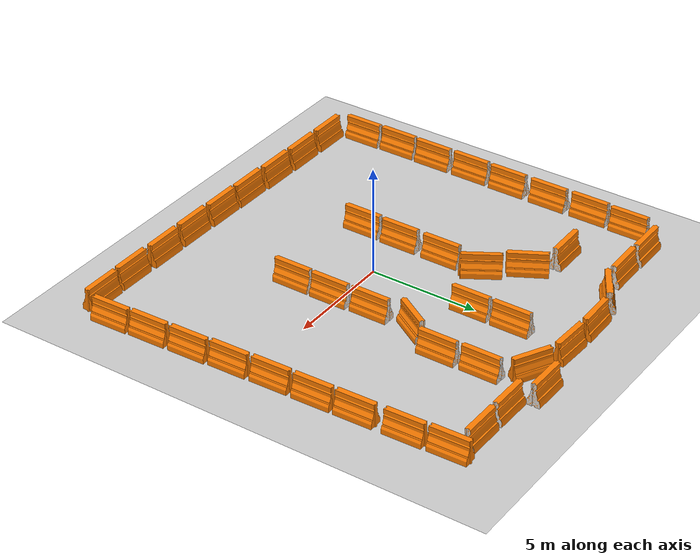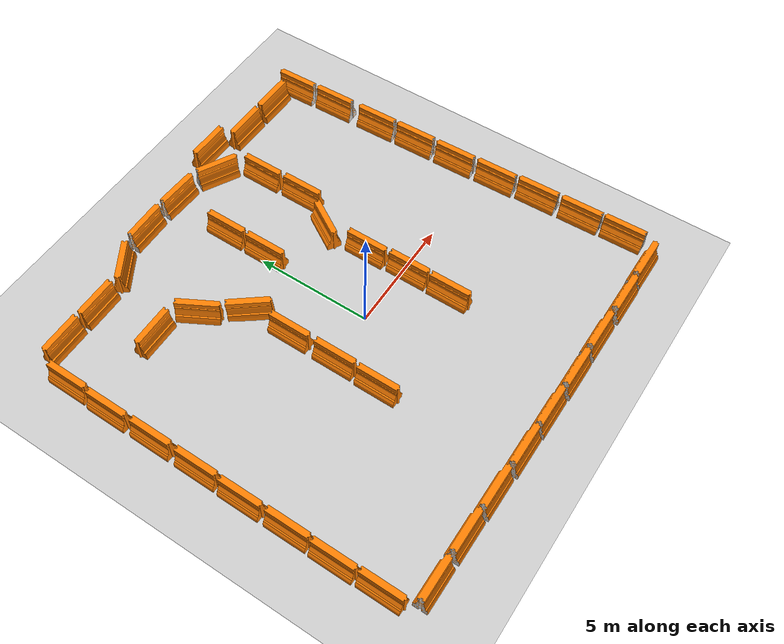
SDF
<sdf version="1.6">
 <world name="default">
  <light name="sun" type="directional">
   <pose>0 0 10 0 -0 0</pose>
   <diffuse>0.8 0.8 0.8 1</diffuse>
   <specular>0.1 0.1 0.1 1</specular>
   <attenuation>
    <range>1000</range>
    <constant>0.9</constant>
    <linear>0.01</linear>
    <quadratic>0.001</quadratic>
   </attenuation>
   <direction>-0.5 0.5 -1</direction>
  </light>
  <model name="ground_plane">
   <static>1</static>
   <link name="link">
    <collision name="collision">
     <geometry><plane><normal>0 0 1</normal><size>100 100</size></plane></geometry>
     <surface><friction><ode><mu>100</mu><mu2>50</mu2></ode></friction></surface>
    </collision>
    <visual name="visual">
     <cast_shadows>0</cast_shadows>
     <geometry><plane><normal>0 0 1</normal><size>100 100</size></plane></geometry>
     <material>
      <script><uri>file://media/materials/scripts/gazebo.material</uri><name>Gazebo/Grey</name></script>
     </material>
    </visual>
   </link>
  </model>
  <gravity>0 0 -9.8</gravity>
  <magnetic_field>6e-06 2.3e-05 -4.2e-05</magnetic_field>
  <atmosphere type="adiabatic"/>
  <physics name="default_physics" default="0" type="ode">
   <max_step_size>0.001</max_step_size>
   <real_time_factor>1</real_time_factor>
   <real_time_update_rate>1000</real_time_update_rate>
  </physics>
  <scene><ambient>0.4 0.4 0.4 1</ambient><background>0.7 0.7 0.7 1</background><shadows>1</shadows></scene>
  <spherical_coordinates>
   <surface_model>EARTH_WGS84</surface_model>
   <latitude_deg>0</latitude_deg>
   <longitude_deg>0</longitude_deg>
   <elevation>0</elevation>
   <heading_deg>0</heading_deg>
  </spherical_coordinates>
  <model name="drc_practice_organge_jersey_barrier">
   <static>1</static>
   <link name="link">
    <visual name="visual">
     <geometry>
      <mesh>
       <uri>model://drc_practice_orange_jersey_barrier/meshes/jersey_barrier.dae</uri>
       <scale>1 1 1</scale>
      </mesh>
     </geometry>
    </visual>
    <collision name="collision">
     <geometry>
      <mesh>
       <uri>model://drc_practice_orange_jersey_barrier/meshes/jersey_barrier.dae</uri>
       <scale>1 1 1</scale>
      </mesh>
     </geometry>
    </collision>
   </link>
   <pose>2.6608 -0.303272 0 0 -0 0</pose>
  </model>
  <model name="drc_practice_organge_jersey_barrier_0">
   <static>1</static>
   <link name="link">
    <visual name="visual">
     <geometry>
      <mesh>
       <uri>model://drc_practice_orange_jersey_barrier/meshes/jersey_barrier.dae</uri>
       <scale>1 1 1</scale>
      </mesh>
     </geometry>
    </visual>
    <collision name="collision">
     <geometry>
      <mesh>
       <uri>model://drc_practice_orange_jersey_barrier/meshes/jersey_barrier.dae</uri>
       <scale>1 1 1</scale>
      </mesh>
     </geometry>
    </collision>
   </link>
   <pose>-2.34525 -0.188624 0 0 -0 0</pose>
  </model>
  <model name="drc_practice_organge_jersey_barrier_1">
   <static>1</static>
   <link name="link">
    <visual name="visual">
     <geometry>
      <mesh>
       <uri>model://drc_practice_orange_jersey_barrier/meshes/jersey_barrier.dae</uri>
       <scale>1 1 1</scale>
      </mesh>
     </geometry>
    </visual>
    <collision name="collision">
     <geometry>
      <mesh>
       <uri>model://drc_practice_orange_jersey_barrier/meshes/jersey_barrier.dae</uri>
       <scale>1 1 1</scale>
      </mesh>
     </geometry>
    </collision>
   </link>
   <pose>-2.39684 -2.14149 0 0 -0 0</pose>
  </model>
  <model name="drc_practice_organge_jersey_barrier_2">
   <static>1</static>
   <link name="link">
    <visual name="visual">
     <geometry>
      <mesh>
       <uri>model://drc_practice_orange_jersey_barrier/meshes/jersey_barrier.dae</uri>
       <scale>1 1 1</scale>
      </mesh>
     </geometry>
    </visual>
    <collision name="collision">
     <geometry>
      <mesh>
       <uri>model://drc_practice_orange_jersey_barrier/meshes/jersey_barrier.dae</uri>
       <scale>1 1 1</scale>
      </mesh>
     </geometry>
    </collision>
   </link>
   <pose>2.63426 -2.20556 0 0 -0 0</pose>
  </model>
  <model name="drc_practice_organge_jersey_barrier_3">
   <static>1</static>
   <link name="link">
    <visual name="visual">
     <geometry>
      <mesh>
       <uri>model://drc_practice_orange_jersey_barrier/meshes/jersey_barrier.dae</uri>
       <scale>1 1 1</scale>
      </mesh>
     </geometry>
    </visual>
    <collision name="collision">
     <geometry>
      <mesh>
       <uri>model://drc_practice_orange_jersey_barrier/meshes/jersey_barrier.dae</uri>
       <scale>1 1 1</scale>
      </mesh>
     </geometry>
    </collision>
   </link>
   <pose>-2.32301 1.91358 0 0 -0 0</pose>
  </model>
  <model name="drc_practice_organge_jersey_barrier_4">
   <static>1</static>
   <link name="link">
    <visual name="visual">
     <geometry>
      <mesh>
       <uri>model://drc_practice_orange_jersey_barrier/meshes/jersey_barrier.dae</uri>
       <scale>1 1 1</scale>
      </mesh>
     </geometry>
    </visual>
    <collision name="collision">
     <geometry>
      <mesh>
       <uri>model://drc_practice_orange_jersey_barrier/meshes/jersey_barrier.dae</uri>
       <scale>1 1 1</scale>
      </mesh>
     </geometry>
    </collision>
   </link>
   <pose>2.60868 1.66239 0 0 -0 0</pose>
  </model>
  <model name="drc_practice_organge_jersey_barrier_5">
   <static>1</static>
   <link name="link">
    <visual name="visual">
     <geometry>
      <mesh>
       <uri>model://drc_practice_orange_jersey_barrier/meshes/jersey_barrier.dae</uri>
       <scale>1 1 1</scale>
      </mesh>
     </geometry>
    </visual>
    <collision name="collision">
     <geometry>
      <mesh>
       <uri>model://drc_practice_orange_jersey_barrier/meshes/jersey_barrier.dae</uri>
       <scale>1 1 1</scale>
      </mesh>
     </geometry>
    </collision>
   </link>
   <pose>2.64714 3.71117 0 0 0 -0.548524</pose>
  </model>
  <model name="drc_practice_organge_jersey_barrier_6">
   <static>1</static>
   <link name="link">
    <visual name="visual">
     <geometry>
      <mesh>
       <uri>model://drc_practice_orange_jersey_barrier/meshes/jersey_barrier.dae</uri>
       <scale>1 1 1</scale>
      </mesh>
     </geometry>
    </visual>
    <collision name="collision">
     <geometry>
      <mesh>
       <uri>model://drc_practice_orange_jersey_barrier/meshes/jersey_barrier.dae</uri>
       <scale>1 1 1</scale>
      </mesh>
     </geometry>
    </collision>
   </link>
   <pose>-2.28616 3.84452 0 -0.058362 -0.078618 0.639624</pose>
  </model>
  <model name="drc_practice_organge_jersey_barrier_7">
   <static>1</static>
   <link name="link">
    <visual name="visual">
     <geometry>
      <mesh>
       <uri>model://drc_practice_orange_jersey_barrier/meshes/jersey_barrier.dae</uri>
       <scale>1 1 1</scale>
      </mesh>
     </geometry>
    </visual>
    <collision name="collision">
     <geometry>
      <mesh>
       <uri>model://drc_practice_orange_jersey_barrier/meshes/jersey_barrier.dae</uri>
       <scale>1 1 1</scale>
      </mesh>
     </geometry>
    </collision>
   </link>
   <pose>0.217138 4.96333 0 0 -0 0</pose>
  </model>
  <model name="drc_practice_organge_jersey_barrier_8">
   <static>1</static>
   <link name="link">
    <visual name="visual">
     <geometry>
      <mesh>
       <uri>model://drc_practice_orange_jersey_barrier/meshes/jersey_barrier.dae</uri>
       <scale>1 1 1</scale>
      </mesh>
     </geometry>
    </visual>
    <collision name="collision">
     <geometry>
      <mesh>
       <uri>model://drc_practice_orange_jersey_barrier/meshes/jersey_barrier.dae</uri>
       <scale>1 1 1</scale>
      </mesh>
     </geometry>
    </collision>
   </link>
   <pose>0.234122 6.91695 0 0 -0 0</pose>
  </model>
  <model name="drc_practice_organge_jersey_barrier_9">
   <static>1</static>
   <link name="link">
    <visual name="visual">
     <geometry>
      <mesh>
       <uri>model://drc_practice_orange_jersey_barrier/meshes/jersey_barrier.dae</uri>
       <scale>1 1 1</scale>
      </mesh>
     </geometry>
    </visual>
    <collision name="collision">
     <geometry>
      <mesh>
       <uri>model://drc_practice_orange_jersey_barrier/meshes/jersey_barrier.dae</uri>
       <scale>1 1 1</scale>
      </mesh>
     </geometry>
    </collision>
   </link>
   <pose>3.5228 5.50245 0 0 -0 0</pose>
  </model>
  <model name="drc_practice_organge_jersey_barrier_10">
   <static>1</static>
   <link name="link">
    <visual name="visual">
     <geometry>
      <mesh>
       <uri>model://drc_practice_orange_jersey_barrier/meshes/jersey_barrier.dae</uri>
       <scale>1 1 1</scale>
      </mesh>
     </geometry>
    </visual>
    <collision name="collision">
     <geometry>
      <mesh>
       <uri>model://drc_practice_orange_jersey_barrier/meshes/jersey_barrier.dae</uri>
       <scale>1 1 1</scale>
      </mesh>
     </geometry>
    </collision>
   </link>
   <pose>3.4875 7.49908 0 0 -0 0</pose>
  </model>
  <model name="drc_practice_organge_jersey_barrier_11">
   <static>1</static>
   <link name="link">
    <visual name="visual">
     <geometry>
      <mesh>
       <uri>model://drc_practice_orange_jersey_barrier/meshes/jersey_barrier.dae</uri>
       <scale>1 1 1</scale>
      </mesh>
     </geometry>
    </visual>
    <collision name="collision">
     <geometry>
      <mesh>
       <uri>model://drc_practice_orange_jersey_barrier/meshes/jersey_barrier.dae</uri>
       <scale>1 1 1</scale>
      </mesh>
     </geometry>
    </collision>
   </link>
   <pose>2.43063 9.14979 0 0 -0 1.08889</pose>
  </model>
  <model name="drc_practice_organge_jersey_barrier_12">
   <static>1</static>
   <link name="link">
    <visual name="visual">
     <geometry>
      <mesh>
       <uri>model://drc_practice_orange_jersey_barrier/meshes/jersey_barrier.dae</uri>
       <scale>1 1 1</scale>
      </mesh>
     </geometry>
    </visual>
    <collision name="collision">
     <geometry>
      <mesh>
       <uri>model://drc_practice_orange_jersey_barrier/meshes/jersey_barrier.dae</uri>
       <scale>1 1 1</scale>
      </mesh>
     </geometry>
    </collision>
   </link>
   <pose>0.455208 9.68132 0 0 -0 1.53448</pose>
  </model>
  <model name="drc_practice_organge_jersey_barrier_13">
   <static>1</static>
   <link name="link">
    <visual name="visual">
     <geometry>
      <mesh>
       <uri>model://drc_practice_orange_jersey_barrier/meshes/jersey_barrier.dae</uri>
       <scale>1 1 1</scale>
      </mesh>
     </geometry>
    </visual>
    <collision name="collision">
     <geometry>
      <mesh>
       <uri>model://drc_practice_orange_jersey_barrier/meshes/jersey_barrier.dae</uri>
       <scale>1 1 1</scale>
      </mesh>
     </geometry>
    </collision>
   </link>
   <pose>-1.58423 9.71038 0 0 -0 1.60037</pose>
  </model>
  <model name="drc_practice_organge_jersey_barrier_14">
   <static>1</static>
   <link name="link">
    <visual name="visual">
     <geometry>
      <mesh>
       <uri>model://drc_practice_orange_jersey_barrier/meshes/jersey_barrier.dae</uri>
       <scale>1 1 1</scale>
      </mesh>
     </geometry>
    </visual>
    <collision name="collision">
     <geometry>
      <mesh>
       <uri>model://drc_practice_orange_jersey_barrier/meshes/jersey_barrier.dae</uri>
       <scale>1 1 1</scale>
      </mesh>
     </geometry>
    </collision>
   </link>
   <pose>-3.56605 9.19217 0 0 0 -1.01608</pose>
  </model>
  <model name="drc_practice_organge_jersey_barrier_15">
   <static>1</static>
   <link name="link">
    <visual name="visual">
     <geometry>
      <mesh>
       <uri>model://drc_practice_orange_jersey_barrier/meshes/jersey_barrier.dae</uri>
       <scale>1 1 1</scale>
      </mesh>
     </geometry>
    </visual>
    <collision name="collision">
     <geometry>
      <mesh>
       <uri>model://drc_practice_orange_jersey_barrier/meshes/jersey_barrier.dae</uri>
       <scale>1 1 1</scale>
      </mesh>
     </geometry>
    </collision>
   </link>
   <pose>-3.53847 5.41226 0 0 -0 0.509736</pose>
  </model>
  <model name="drc_practice_organge_jersey_barrier_16">
   <static>1</static>
   <link name="link">
    <visual name="visual">
     <geometry>
      <mesh>
       <uri>model://drc_practice_orange_jersey_barrier/meshes/jersey_barrier.dae</uri>
       <scale>1 1 1</scale>
      </mesh>
     </geometry>
    </visual>
    <collision name="collision">
     <geometry>
      <mesh>
       <uri>model://drc_practice_orange_jersey_barrier/meshes/jersey_barrier.dae</uri>
       <scale>1 1 1</scale>
      </mesh>
     </geometry>
    </collision>
   </link>
   <pose>-5.48272 8.83843 0 0 0 -1.55045</pose>
  </model>
  <model name="drc_practice_organge_jersey_barrier_16_clone">
   <static>1</static>
   <link name="link">
    <visual name="visual">
     <geometry>
      <mesh>
       <uri>model://drc_practice_orange_jersey_barrier/meshes/jersey_barrier.dae</uri>
       <scale>1 1 1</scale>
      </mesh>
     </geometry>
    </visual>
    <collision name="collision">
     <geometry>
      <mesh>
       <uri>model://drc_practice_orange_jersey_barrier/meshes/jersey_barrier.dae</uri>
       <scale>1 1 1</scale>
      </mesh>
     </geometry>
    </collision>
   </link>
   <pose>-7.43905 8.84089 0 0 0 -1.55045</pose>
  </model>
  <model name="drc_practice_organge_jersey_barrier_16_clone_0">
   <static>1</static>
   <link name="link">
    <visual name="visual">
     <geometry>
      <mesh>
       <uri>model://drc_practice_orange_jersey_barrier/meshes/jersey_barrier.dae</uri>
       <scale>1 1 1</scale>
      </mesh>
     </geometry>
    </visual>
    <collision name="collision">
     <geometry>
      <mesh>
       <uri>model://drc_practice_orange_jersey_barrier/meshes/jersey_barrier.dae</uri>
       <scale>1 1 1</scale>
      </mesh>
     </geometry>
    </collision>
   </link>
   <pose>-5.2762 6.18419 0 0 0 -1.55045</pose>
  </model>
  <model name="drc_practice_organge_jersey_barrier_17">
   <static>1</static>
   <link name="link">
    <visual name="visual">
     <geometry>
      <mesh>
       <uri>model://drc_practice_orange_jersey_barrier/meshes/jersey_barrier.dae</uri>
       <scale>1 1 1</scale>
      </mesh>
     </geometry>
    </visual>
    <collision name="collision">
     <geometry>
      <mesh>
       <uri>model://drc_practice_orange_jersey_barrier/meshes/jersey_barrier.dae</uri>
       <scale>1 1 1</scale>
      </mesh>
     </geometry>
    </collision>
   </link>
   <pose>-8.65342 7.41479 0 0 -0 0</pose>
  </model>
  <model name="drc_practice_organge_jersey_barrier_18">
   <static>1</static>
   <link name="link">
    <visual name="visual">
     <geometry>
      <mesh>
       <uri>model://drc_practice_orange_jersey_barrier/meshes/jersey_barrier.dae</uri>
       <scale>1 1 1</scale>
      </mesh>
     </geometry>
    </visual>
    <collision name="collision">
     <geometry>
      <mesh>
       <uri>model://drc_practice_orange_jersey_barrier/meshes/jersey_barrier.dae</uri>
       <scale>1 1 1</scale>
      </mesh>
     </geometry>
    </collision>
   </link>
   <pose>-8.71939 5.44433 0 0 -0 0</pose>
  </model>
  <model name="drc_practice_organge_jersey_barrier_18_clone">
   <static>1</static>
   <link name="link">
    <visual name="visual">
     <geometry>
      <mesh>
       <uri>model://drc_practice_orange_jersey_barrier/meshes/jersey_barrier.dae</uri>
       <scale>1 1 1</scale>
      </mesh>
     </geometry>
    </visual>
    <collision name="collision">
     <geometry>
      <mesh>
       <uri>model://drc_practice_orange_jersey_barrier/meshes/jersey_barrier.dae</uri>
       <scale>1 1 1</scale>
      </mesh>
     </geometry>
    </collision>
   </link>
   <pose>-8.70553 3.38806 0 0 -0 0</pose>
  </model>
  <model name="drc_practice_organge_jersey_barrier_18_clone_0">
   <static>1</static>
   <link name="link">
    <visual name="visual">
     <geometry>
      <mesh>
       <uri>model://drc_practice_orange_jersey_barrier/meshes/jersey_barrier.dae</uri>
       <scale>1 1 1</scale>
      </mesh>
     </geometry>
    </visual>
    <collision name="collision">
     <geometry>
      <mesh>
       <uri>model://drc_practice_orange_jersey_barrier/meshes/jersey_barrier.dae</uri>
       <scale>1 1 1</scale>
      </mesh>
     </geometry>
    </collision>
   </link>
   <pose>-8.72373 1.3055 0 0 -0 0</pose>
  </model>
  <model name="drc_practice_organge_jersey_barrier_18_clone_1">
   <static>1</static>
   <link name="link">
    <visual name="visual">
     <geometry>
      <mesh>
       <uri>model://drc_practice_orange_jersey_barrier/meshes/jersey_barrier.dae</uri>
       <scale>1 1 1</scale>
      </mesh>
     </geometry>
    </visual>
    <collision name="collision">
     <geometry>
      <mesh>
       <uri>model://drc_practice_orange_jersey_barrier/meshes/jersey_barrier.dae</uri>
       <scale>1 1 1</scale>
      </mesh>
     </geometry>
    </collision>
   </link>
   <pose>-8.7639 -0.658754 0 0 -0 0</pose>
  </model>
  <model name="drc_practice_organge_jersey_barrier_18_clone_2">
   <static>1</static>
   <link name="link">
    <visual name="visual">
     <geometry>
      <mesh>
       <uri>model://drc_practice_orange_jersey_barrier/meshes/jersey_barrier.dae</uri>
       <scale>1 1 1</scale>
      </mesh>
     </geometry>
    </visual>
    <collision name="collision">
     <geometry>
      <mesh>
       <uri>model://drc_practice_orange_jersey_barrier/meshes/jersey_barrier.dae</uri>
       <scale>1 1 1</scale>
      </mesh>
     </geometry>
    </collision>
   </link>
   <pose>-8.7581 -2.66295 0 0 -0 0</pose>
  </model>
  <model name="drc_practice_organge_jersey_barrier_18_clone_3">
   <static>1</static>
   <link name="link">
    <visual name="visual">
     <geometry>
      <mesh>
       <uri>model://drc_practice_orange_jersey_barrier/meshes/jersey_barrier.dae</uri>
       <scale>1 1 1</scale>
      </mesh>
     </geometry>
    </visual>
    <collision name="collision">
     <geometry>
      <mesh>
       <uri>model://drc_practice_orange_jersey_barrier/meshes/jersey_barrier.dae</uri>
       <scale>1 1 1</scale>
      </mesh>
     </geometry>
    </collision>
   </link>
   <pose>-8.79383 -4.57381 0 0 -0 0</pose>
  </model>
  <model name="drc_practice_organge_jersey_barrier_18_clone_4">
   <static>1</static>
   <link name="link">
    <visual name="visual">
     <geometry>
      <mesh>
       <uri>model://drc_practice_orange_jersey_barrier/meshes/jersey_barrier.dae</uri>
       <scale>1 1 1</scale>
      </mesh>
     </geometry>
    </visual>
    <collision name="collision">
     <geometry>
      <mesh>
       <uri>model://drc_practice_orange_jersey_barrier/meshes/jersey_barrier.dae</uri>
       <scale>1 1 1</scale>
      </mesh>
     </geometry>
    </collision>
   </link>
   <pose>-8.76534 -6.47685 0 0 -0 0</pose>
  </model>
  <model name="drc_practice_organge_jersey_barrier_18_clone_5">
   <static>1</static>
   <link name="link">
    <visual name="visual">
     <geometry>
      <mesh>
       <uri>model://drc_practice_orange_jersey_barrier/meshes/jersey_barrier.dae</uri>
       <scale>1 1 1</scale>
      </mesh>
     </geometry>
    </visual>
    <collision name="collision">
     <geometry>
      <mesh>
       <uri>model://drc_practice_orange_jersey_barrier/meshes/jersey_barrier.dae</uri>
       <scale>1 1 1</scale>
      </mesh>
     </geometry>
    </collision>
   </link>
   <pose>-7.6391 -7.81451 0 0 -0 1.57679</pose>
  </model>
  <model name="drc_practice_organge_jersey_barrier_18_clone_5_clone">
   <static>1</static>
   <link name="link">
    <visual name="visual">
     <geometry>
      <mesh>
       <uri>model://drc_practice_orange_jersey_barrier/meshes/jersey_barrier.dae</uri>
       <scale>1 1 1</scale>
      </mesh>
     </geometry>
    </visual>
    <collision name="collision">
     <geometry>
      <mesh>
       <uri>model://drc_practice_orange_jersey_barrier/meshes/jersey_barrier.dae</uri>
       <scale>1 1 1</scale>
      </mesh>
     </geometry>
    </collision>
   </link>
   <pose>-5.64504 -7.82769 0 0 -0 1.57679</pose>
  </model>
  <model name="drc_practice_organge_jersey_barrier_18_clone_5_clone_0">
   <static>1</static>
   <link name="link">
    <visual name="visual">
     <geometry>
      <mesh>
       <uri>model://drc_practice_orange_jersey_barrier/meshes/jersey_barrier.dae</uri>
       <scale>1 1 1</scale>
      </mesh>
     </geometry>
    </visual>
    <collision name="collision">
     <geometry>
      <mesh>
       <uri>model://drc_practice_orange_jersey_barrier/meshes/jersey_barrier.dae</uri>
       <scale>1 1 1</scale>
      </mesh>
     </geometry>
    </collision>
   </link>
   <pose>-3.71569 -7.86475 0 0 -0 1.57679</pose>
  </model>
  <model name="drc_practice_organge_jersey_barrier_18_clone_5_clone_1">
   <static>1</static>
   <link name="link">
    <visual name="visual">
     <geometry>
      <mesh>
       <uri>model://drc_practice_orange_jersey_barrier/meshes/jersey_barrier.dae</uri>
       <scale>1 1 1</scale>
      </mesh>
     </geometry>
    </visual>
    <collision name="collision">
     <geometry>
      <mesh>
       <uri>model://drc_practice_orange_jersey_barrier/meshes/jersey_barrier.dae</uri>
       <scale>1 1 1</scale>
      </mesh>
     </geometry>
    </collision>
   </link>
   <pose>-1.76391 -7.92763 0 0 -0 1.57679</pose>
  </model>
  <model name="drc_practice_organge_jersey_barrier_18_clone_5_clone_2">
   <static>1</static>
   <link name="link">
    <visual name="visual">
     <geometry>
      <mesh>
       <uri>model://drc_practice_orange_jersey_barrier/meshes/jersey_barrier.dae</uri>
       <scale>1 1 1</scale>
      </mesh>
     </geometry>
    </visual>
    <collision name="collision">
     <geometry>
      <mesh>
       <uri>model://drc_practice_orange_jersey_barrier/meshes/jersey_barrier.dae</uri>
       <scale>1 1 1</scale>
      </mesh>
     </geometry>
    </collision>
   </link>
   <pose>0.114895 -7.96399 0 0 -0 1.57679</pose>
  </model>
  <model name="drc_practice_organge_jersey_barrier_18_clone_5_clone_3">
   <static>1</static>
   <link name="link">
    <visual name="visual">
     <geometry>
      <mesh>
       <uri>model://drc_practice_orange_jersey_barrier/meshes/jersey_barrier.dae</uri>
       <scale>1 1 1</scale>
      </mesh>
     </geometry>
    </visual>
    <collision name="collision">
     <geometry>
      <mesh>
       <uri>model://drc_practice_orange_jersey_barrier/meshes/jersey_barrier.dae</uri>
       <scale>1 1 1</scale>
      </mesh>
     </geometry>
    </collision>
   </link>
   <pose>2.06272 -8.00198 0 0 -0 1.57679</pose>
  </model>
  <model name="drc_practice_organge_jersey_barrier_18_clone_5_clone_4">
   <static>1</static>
   <link name="link">
    <visual name="visual">
     <geometry>
      <mesh>
       <uri>model://drc_practice_orange_jersey_barrier/meshes/jersey_barrier.dae</uri>
       <scale>1 1 1</scale>
      </mesh>
     </geometry>
    </visual>
    <collision name="collision">
     <geometry>
      <mesh>
       <uri>model://drc_practice_orange_jersey_barrier/meshes/jersey_barrier.dae</uri>
       <scale>1 1 1</scale>
      </mesh>
     </geometry>
    </collision>
   </link>
   <pose>4.03591 -7.99044 0 0 -0 1.57679</pose>
  </model>
  <model name="drc_practice_organge_jersey_barrier_18_clone_5_clone_5">
   <static>1</static>
   <link name="link">
    <visual name="visual">
     <geometry>
      <mesh>
       <uri>model://drc_practice_orange_jersey_barrier/meshes/jersey_barrier.dae</uri>
       <scale>1 1 1</scale>
      </mesh>
     </geometry>
    </visual>
    <collision name="collision">
     <geometry>
      <mesh>
       <uri>model://drc_practice_orange_jersey_barrier/meshes/jersey_barrier.dae</uri>
       <scale>1 1 1</scale>
      </mesh>
     </geometry>
    </collision>
   </link>
   <pose>6.07622 -8.02843 0 0 -0 1.57679</pose>
  </model>
  <model name="drc_practice_organge_jersey_barrier_18_clone_5_clone_6">
   <static>1</static>
   <link name="link">
    <visual name="visual">
     <geometry>
      <mesh>
       <uri>model://drc_practice_orange_jersey_barrier/meshes/jersey_barrier.dae</uri>
       <scale>1 1 1</scale>
      </mesh>
     </geometry>
    </visual>
    <collision name="collision">
     <geometry>
      <mesh>
       <uri>model://drc_practice_orange_jersey_barrier/meshes/jersey_barrier.dae</uri>
       <scale>1 1 1</scale>
      </mesh>
     </geometry>
    </collision>
   </link>
   <pose>8 -8 0 0 -0 1.57679</pose>
  </model>
  <model name="drc_practice_organge_jersey_barrier_18_clone_5_clone_7">
   <static>1</static>
   <link name="link">
    <visual name="visual">
     <geometry>
      <mesh>
       <uri>model://drc_practice_orange_jersey_barrier/meshes/jersey_barrier.dae</uri>
       <scale>1 1 1</scale>
      </mesh>
     </geometry>
    </visual>
    <collision name="collision">
     <geometry>
      <mesh>
       <uri>model://drc_practice_orange_jersey_barrier/meshes/jersey_barrier.dae</uri>
       <scale>1 1 1</scale>
      </mesh>
     </geometry>
    </collision>
   </link>
   <pose>9.02288 -6.62705 0 0 0 -3.11205</pose>
  </model>
  <model name="drc_practice_organge_jersey_barrier_18_clone_5_clone_7_clone">
   <static>1</static>
   <link name="link">
    <visual name="visual">
     <geometry>
      <mesh>
       <uri>model://drc_practice_orange_jersey_barrier/meshes/jersey_barrier.dae</uri>
       <scale>1 1 1</scale>
      </mesh>
     </geometry>
    </visual>
    <collision name="collision">
     <geometry>
      <mesh>
       <uri>model://drc_practice_orange_jersey_barrier/meshes/jersey_barrier.dae</uri>
       <scale>1 1 1</scale>
      </mesh>
     </geometry>
    </collision>
   </link>
   <pose>8.93475 -4.72897 0 0 0 -3.11205</pose>
  </model>
  <model name="drc_practice_organge_jersey_barrier_18_clone_5_clone_7_clone_0">
   <static>1</static>
   <link name="link">
    <visual name="visual">
     <geometry>
      <mesh>
       <uri>model://drc_practice_orange_jersey_barrier/meshes/jersey_barrier.dae</uri>
       <scale>1 1 1</scale>
      </mesh>
     </geometry>
    </visual>
    <collision name="collision">
     <geometry>
      <mesh>
       <uri>model://drc_practice_orange_jersey_barrier/meshes/jersey_barrier.dae</uri>
       <scale>1 1 1</scale>
      </mesh>
     </geometry>
    </collision>
   </link>
   <pose>8.86729 -2.76009 0 0 0 -3.11205</pose>
  </model>
  <model name="drc_practice_organge_jersey_barrier_18_clone_5_clone_7_clone_1">
   <static>1</static>
   <link name="link">
    <visual name="visual">
     <geometry>
      <mesh>
       <uri>model://drc_practice_orange_jersey_barrier/meshes/jersey_barrier.dae</uri>
       <scale>1 1 1</scale>
      </mesh>
     </geometry>
    </visual>
    <collision name="collision">
     <geometry>
      <mesh>
       <uri>model://drc_practice_orange_jersey_barrier/meshes/jersey_barrier.dae</uri>
       <scale>1 1 1</scale>
      </mesh>
     </geometry>
    </collision>
   </link>
   <pose>8.75076 -0.830238 0 0 0 -3.11205</pose>
  </model>
  <model name="drc_practice_organge_jersey_barrier_18_clone_5_clone_7_clone_2">
   <static>1</static>
   <link name="link">
    <visual name="visual">
     <geometry>
      <mesh>
       <uri>model://drc_practice_orange_jersey_barrier/meshes/jersey_barrier.dae</uri>
       <scale>1 1 1</scale>
      </mesh>
     </geometry>
    </visual>
    <collision name="collision">
     <geometry>
      <mesh>
       <uri>model://drc_practice_orange_jersey_barrier/meshes/jersey_barrier.dae</uri>
       <scale>1 1 1</scale>
      </mesh>
     </geometry>
    </collision>
   </link>
   <pose>8.67455 1.14199 0 0 0 -3.11205</pose>
  </model>
  <model name="drc_practice_organge_jersey_barrier_18_clone_5_clone_7_clone_3">
   <static>1</static>
   <link name="link">
    <visual name="visual">
     <geometry>
      <mesh>
       <uri>model://drc_practice_orange_jersey_barrier/meshes/jersey_barrier.dae</uri>
       <scale>1 1 1</scale>
      </mesh>
     </geometry>
    </visual>
    <collision name="collision">
     <geometry>
      <mesh>
       <uri>model://drc_practice_orange_jersey_barrier/meshes/jersey_barrier.dae</uri>
       <scale>1 1 1</scale>
      </mesh>
     </geometry>
    </collision>
   </link>
   <pose>8.63686 3.11999 0 0 0 -3.11205</pose>
  </model>
  <model name="drc_practice_organge_jersey_barrier_18_clone_5_clone_7_clone_4">
   <static>1</static>
   <link name="link">
    <visual name="visual">
     <geometry>
      <mesh>
       <uri>model://drc_practice_orange_jersey_barrier/meshes/jersey_barrier.dae</uri>
       <scale>1 1 1</scale>
      </mesh>
     </geometry>
    </visual>
    <collision name="collision">
     <geometry>
      <mesh>
       <uri>model://drc_practice_orange_jersey_barrier/meshes/jersey_barrier.dae</uri>
       <scale>1 1 1</scale>
      </mesh>
     </geometry>
    </collision>
   </link>
   <pose>8.58157 5.06203 0 0 0 -3.11205</pose>
  </model>
  <model name="drc_practice_organge_jersey_barrier_18_clone_5_clone_7_clone_5">
   <static>1</static>
   <link name="link">
    <visual name="visual">
     <geometry>
      <mesh>
       <uri>model://drc_practice_orange_jersey_barrier/meshes/jersey_barrier.dae</uri>
       <scale>1 1 1</scale>
      </mesh>
     </geometry>
    </visual>
    <collision name="collision">
     <geometry>
      <mesh>
       <uri>model://drc_practice_orange_jersey_barrier/meshes/jersey_barrier.dae</uri>
       <scale>1 1 1</scale>
      </mesh>
     </geometry>
    </collision>
   </link>
   <pose>8.51044 7.24744 0 0 0 -3.11205</pose>
  </model>
  <model name="drc_practice_organge_jersey_barrier_18_clone_5_clone_7_clone_6">
   <static>1</static>
   <link name="link">
    <visual name="visual">
     <geometry>
      <mesh>
       <uri>model://drc_practice_orange_jersey_barrier/meshes/jersey_barrier.dae</uri>
       <scale>1 1 1</scale>
      </mesh>
     </geometry>
    </visual>
    <collision name="collision">
     <geometry>
      <mesh>
       <uri>model://drc_practice_orange_jersey_barrier/meshes/jersey_barrier.dae</uri>
       <scale>1 1 1</scale>
      </mesh>
     </geometry>
    </collision>
   </link>
   <pose>8.42897 9.20715 0 0 0 -3.11205</pose>
  </model>
  <model name="drc_practice_organge_jersey_barrier_18_clone_5_clone_7_clone_7">
   <static>1</static>
   <link name="link">
    <visual name="visual">
     <geometry>
      <mesh>
       <uri>model://drc_practice_orange_jersey_barrier/meshes/jersey_barrier.dae</uri>
       <scale>1 1 1</scale>
      </mesh>
     </geometry>
    </visual>
    <collision name="collision">
     <geometry>
      <mesh>
       <uri>model://drc_practice_orange_jersey_barrier/meshes/jersey_barrier.dae</uri>
       <scale>1 1 1</scale>
      </mesh>
     </geometry>
    </collision>
   </link>
   <pose>7.05198 9.64282 0 0 0 -1.5742</pose>
  </model>
  <model name="drc_practice_organge_jersey_barrier_18_clone_5_clone_7_clone_7_clone">
   <static>1</static>
   <link name="link">
    <visual name="visual">
     <geometry>
      <mesh>
       <uri>model://drc_practice_orange_jersey_barrier/meshes/jersey_barrier.dae</uri>
       <scale>1 1 1</scale>
      </mesh>
     </geometry>
    </visual>
    <collision name="collision">
     <geometry>
      <mesh>
       <uri>model://drc_practice_orange_jersey_barrier/meshes/jersey_barrier.dae</uri>
       <scale>1 1 1</scale>
      </mesh>
     </geometry>
    </collision>
   </link>
   <pose>5.10227 9.65716 0 0 0 -1.5742</pose>
  </model>
  <model name="drc_practice_organge_jersey_barrier_18_clone_5_clone_7_clone_7_clone_0">
   <static>1</static>
   <link name="link">
    <visual name="visual">
     <geometry>
      <mesh>
       <uri>model://drc_practice_orange_jersey_barrier/meshes/jersey_barrier.dae</uri>
       <scale>1 1 1</scale>
      </mesh>
     </geometry>
    </visual>
    <collision name="collision">
     <geometry>
      <mesh>
       <uri>model://drc_practice_orange_jersey_barrier/meshes/jersey_barrier.dae</uri>
       <scale>1 1 1</scale>
      </mesh>
     </geometry>
    </collision>
   </link>
   <pose>3.295 10.2551 0 0 0 -1.5742</pose>
  </model>
 </world>
</sdf>
